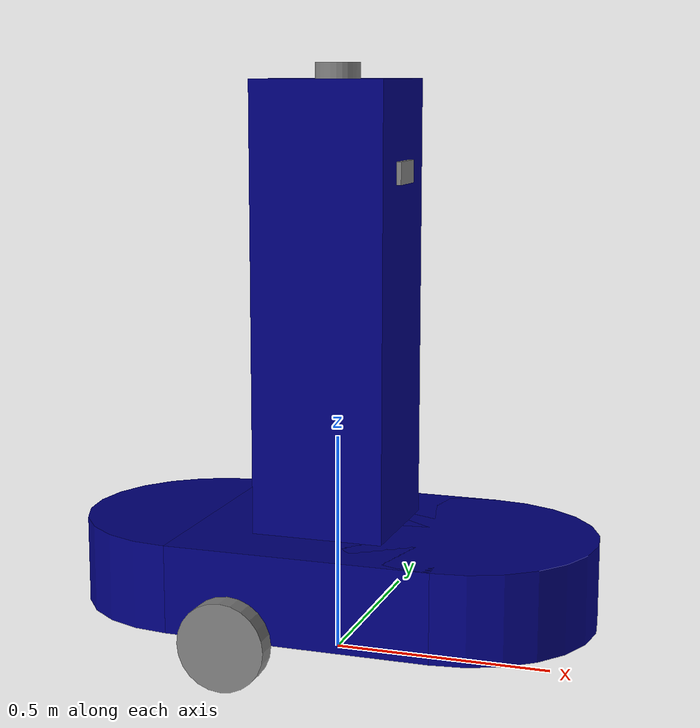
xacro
<?xml version="1.0"?>
<robot name="my_robot" xmlns:xacro="http://www.ros.org/wiki/xacro">

    <!-- Robot Base-->
    <xacro:include filename="common_properties.xacro" />
    <xacro:include filename="robot_base.xacro" />
    <xacro:include filename="robot_base_gazebo.xacro" />

    <!-- Sensors-->
     <xacro:include filename="camera.xacro"/>
     <xacro:include filename="lidar.xacro"/>
</robot>

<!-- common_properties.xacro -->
<robot xmlns:xacro="http://www.ros.org/wiki/xacro">

    <material name="blue">
        <color rgba="0 0 0.5 1" />
    </material>

    <material name="grey">
        <color rgba="0.5 0.5 0.5 1" />
    </material>

    <material name="red">
        <color rgba="0.5 0 0 1" />
    </material>

    <material name="black">
        <color rgba="0 0 0 1" />
    </material>

    <xacro:macro name="box_inertia" params="m l w h xyz rpy">
        <inertial>
            <origin xyz="${xyz}" rpy="${rpy}" />
            <mass value="${m}" />
            <inertia ixx="${(m/12) * (h*h + l*l)}" ixy="0" ixz="0"
                     iyy="${(m/12) * (w*w + l*l)}" iyz="0"
                     izz="${(m/12) * (w*w + h*h)}" />
        </inertial>
    </xacro:macro>

    <xacro:macro name="cylinder_inertia" params="m r h xyz rpy">
        <inertial>
            <origin xyz="${xyz}" rpy="${rpy}" />
            <mass value="${m}" />
            <inertia ixx="${(m/12) * (3*r*r + h*h)}" ixy="0" ixz="0"
                     iyy="${(m/12) * (3*r*r + h*h)}" iyz="0"
                     izz="${(m/2) * (r*r)}" />
        </inertial>
    </xacro:macro>

    <xacro:macro name="sphere_inertia" params="m r xyz rpy">
        <inertial>
            <origin xyz="${xyz}" rpy="${rpy}" />
            <mass value="${m}" />
            <inertia ixx="${(2/5) * m * r * r}" ixy="0" ixz="0"
                     iyy="${(2/5) * m * r * r}" iyz="0"
                     izz="${(2/5) * m * r * r}" />
        </inertial>
    </xacro:macro>

    <xacro:macro name="gazebo_lidar_sensor" params="sensor_name link_name update_rate samples resolution min_angle max_angle min max range_resolution plugin_name topic_name output_type frame_name ">
        <gazebo reference="${link_name}">
            <sensor name="${sensor_name}" type="ray">
                <always_on>true</always_on>
                <visualize>true</visualize>
                <update_rate>10</update_rate>
                <ray>
                    <scan>
                        <horizontal>
                            <samples>${samples}</samples>
                            <resolution>${resolution}</resolution>
                            <min_angle>${min_angle}</min_angle>
                            <max_angle>${max_angle}</max_angle>
                        </horizontal>
                    </scan>
                    <range>
                        <min>${min}</min>
                        <max>${max}</max>
                        <resolution>0.15</resolution>
                    </range>
                    <noise>
                        <type>gaussian</type>
                        <mean>0.0</mean>
                        <stddev>0.01</stddev>
                    </noise>
                </ray>
                <plugin filename="libgazebo_ros_ray_sensor.so" name="${plugin_name}">
                    <topic_name>${topic_name}</topic_name>
                    <output_type>${output_type}</output_type>
                    <frame_name>${frame_name}</frame_name>
                    <radiation_type>infrared</radiation_type>
                </plugin>
            </sensor>
        </gazebo>
    </xacro:macro>
</robot>

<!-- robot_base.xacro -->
<robot xmlns:xacro="http://www.ros.org/wiki/xacro">

    <!-- Robot Base-->
    <xacro:property name="base_length" value="0.6" />
    <xacro:property name="base_width" value="0.6" />
    <xacro:property name="base_height" value="0.2" />
    <xacro:property name="wheel_radius" value="0.1" />
    <xacro:property name="wheel_length" value="0.05" />

    <!-- tower-->
    <xacro:property name="tower_length" value="0.3" />
    <xacro:property name="tower_width" value="0.3" />
    <xacro:property name="tower_height" value="1.0" />

    <link name="base_footprint" />

    <link name="base_link">
        <visual>
            <geometry>
                <box size="${base_length} ${base_width} ${base_height}" />
            </geometry>
            <origin xyz="0 0 ${base_height / 2.0}" rpy="0 0 0" />
            <material name="blue" />
        </visual>
        <collision>
            <geometry>
                <box size="${base_length} ${base_width} ${base_height}" />
            </geometry>
            <origin xyz="0 0 ${base_height / 2.0}" rpy="0 0 0" />
        </collision>
        <xacro:box_inertia m="5.0" l="${2*base_length}" w="${2*base_width}" h="${2*base_height}"
                           xyz="0 0 ${base_height / 2.0}" rpy="0 0 0" />
    </link>

    <link name="front_bumper_link">
        <visual>
            <geometry>
                <cylinder radius="${base_width/2}" length="${base_height}"/>
            </geometry>
            <origin xyz="0 0 ${base_height / 2.0}" rpy="0 0 0" />
            <material name="blue" />
        </visual>
        <collision>
            <geometry>
                <box size="${base_width} ${base_width} ${base_height}" />
            </geometry>
            <origin xyz="0 0 ${base_height / 2.0}" rpy="0 0 0" />
        </collision>
        <xacro:cylinder_inertia m="5.0" r="${base_width/2}" h="${base_width}"
                           xyz="0 0 ${base_width / 2.0}" rpy="0 0 0" />
    </link>

    <link name="back_bumper_link">
        <visual>
            <geometry>
                <cylinder radius="${base_width/2}" length="${base_height}"/>
            </geometry>
            <origin xyz="0 0 ${base_height / 2.0}" rpy="0 0 0" />
            <material name="blue" />
        </visual>
        <collision>
            <geometry>
                <box size="${base_width} ${base_width} ${base_height}" />
            </geometry>
            <origin xyz="0 0 ${base_height / 2.0}" rpy="0 0 0" />
        </collision>
        <xacro:cylinder_inertia m="5.0" r="${base_width/2}" h="${base_width}"
                           xyz="0 0 ${base_width / 2.0}" rpy="0 0 0" />
    </link>

    <link name="tower_link">
        <visual>
            <geometry>
                <box size="${tower_length} ${tower_width} ${tower_height}" />
            </geometry>
            <origin xyz="0 0 ${tower_height/2.0}" rpy="0 0 0" />
            <material name="blue" />
        </visual>
        <collision>
            <geometry>
                <box size="${tower_length} ${tower_width} ${tower_height}" />
            </geometry>
            <origin xyz="0 0 ${tower_height}" rpy="0 0 0" />
        </collision>
        <xacro:box_inertia m="5.0" l="${2*tower_length}" w="${2*tower_width}" h="${2*tower_height}"
                           xyz="0 0 ${tower_height / 2.0}" rpy="0 0 0" />
    </link>

    <xacro:macro name="wheel_link" params="prefix">
        <link name="${prefix}_wheel_link">
            <visual>
                <geometry>
                    <cylinder radius="${wheel_radius}" length="${wheel_length}" />
                </geometry>
                <origin xyz="0 0 0" rpy="${pi / 2.0} 0 0" />
                <material name="grey" />
            </visual>
            <collision>
                <geometry>
                    <cylinder radius="${wheel_radius}" length="${wheel_length}" />
                </geometry>
                <origin xyz="0 0 0" rpy="${pi / 2.0} 0 0" />
            </collision>
            <xacro:cylinder_inertia m="1.0" r="${2*wheel_radius}" h="${2*wheel_length}"
                                    xyz="0 0 0" rpy="${pi / 2.0} 0 0" />
        </link>
    </xacro:macro>

    <xacro:wheel_link prefix="right" />
    <xacro:wheel_link prefix="left" />

    <link name="caster_wheel_link">
        <visual>
            <geometry>
                <sphere radius="${wheel_radius / 2.0}" />
            </geometry>
            <origin xyz="0 0 0" rpy="0 0 0" />
            <material name="grey" />
        </visual>
        <collision>
            <geometry>
                <sphere radius="${wheel_radius / 2.0}" />
            </geometry>
            <origin xyz="0 0 0" rpy="0 0 0" />
        </collision>
        <xacro:sphere_inertia m="0.5" r="${2*wheel_radius / 2.0}"
                              xyz="0 0 0" rpy="0 0 0" />
    </link>

    <joint name="front_bumper_joint" type="fixed">
        <parent link="base_link" />
        <child link="front_bumper_link" />
        <origin xyz="${base_length / 2.0} 0 0" rpy="0 0 0" />
    </joint>

    <joint name="back_bumper_joint" type="fixed">
        <parent link="base_link" />
        <child link="back_bumper_link" />
        <origin xyz="${-base_length / 2.0} 0 0" rpy="0 0 0" />
    </joint>

    <joint name="base_joint" type="fixed">
        <parent link="base_footprint" />
        <child link="base_link" />
        <origin xyz="0 0 ${wheel_radius}" rpy="0 0 0"/>
    </joint>

    <joint name="tower_joint" type="fixed">
        <parent link="base_link" />
        <child link="tower_link" />
        <origin xyz="0 0 ${base_height}" rpy="0 0 0" />
    </joint>

    <joint name="base_right_wheel_joint" type="continuous">
        <parent link="base_link" />
        <child link="right_wheel_link" />
        <origin xyz="${-base_length / 4.0} ${-(base_width + wheel_length) / 2.0} 0" rpy="0 0 0" />
        <axis xyz="0 1 0" />
    </joint>

    <joint name="base_left_wheel_joint" type="continuous">
        <parent link="base_link" />
        <child link="left_wheel_link" />
        <origin xyz="${-base_length / 4.0} ${(base_width + wheel_length) / 2.0} 0" rpy="0 0 0" />
        <axis xyz="0 1 0" />
    </joint>

    <joint name="base_caster_wheel_joint" type="fixed">
        <parent link="base_link" />
        <child link="caster_wheel_link" />
        <origin xyz="${base_length / 3.0} 0 ${-wheel_radius / 2.0}" rpy="0 0 0" />
    </joint>

</robot>

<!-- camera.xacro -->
<robot xmlns:xacro="http://www.ros.org/wiki/xacro">

    <xacro:property name="camera_length" value="0.01" />
    <xacro:property name="camera_width" value="0.1" />
    <xacro:property name="camera_height" value="0.05" />

    <link name="camera_link">
        <visual>
            <geometry>
                <box size="${camera_length} ${camera_width} ${camera_height}" />
            </geometry>
            <material name="grey" />
        </visual>
        <collision>
            <geometry>
                <box size="${camera_length} ${camera_width} ${camera_height}" />
            </geometry>
        </collision>
        <xacro:box_inertia m="0.1" l="${camera_length}" w="${camera_width}" h="${camera_height}"
                           xyz="0 0 0" rpy="0 0 0" />
    </link>

    <joint name="base_camera_joint" type="fixed">
        <parent link="tower_link" />
        <child link="camera_link" />
        <origin xyz="${(tower_width + camera_length) / 2.0} 0 ${tower_height * 0.8}" rpy="0 0 0" />
    </joint>

    <link name="camera_link_optical">
    </link>

    <joint name="camera_optical_joint" type="fixed">
        <!-- these values have to be these values otherwise the gazebo camera
            image won't be aligned properly with the frame it is supposedly
            originating from -->
        <origin xyz="0 0 0" rpy="${-pi/2} 0 ${-pi/2}"/>
        <parent link="camera_link"/>
        <child link="camera_link_optical"/>
    </joint>

    <gazebo reference="camera_link">
        <material>Gazebo/Red</material>
        <sensor name="camera_sensor" type="camera">
            <pose>0 0 0 0 0 0</pose>
            <visualize>true</visualize>
            <update_rate>10.0</update_rate>
            <plugin name="camera_controller" filename="libgazebo_ros_camera.so">
                <frame_name>camera_link_optical</frame_name>
            </plugin>
        </sensor>
    </gazebo>

</robot>

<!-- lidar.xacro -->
<robot xmlns:xacro="http://www.ros.org/wiki/xacro">

    <!-- Corrected property names and more reasonable dimensions -->
    <xacro:property name="lidar_radius" value="0.05" />
    <xacro:property name="lidar_length" value="0.05" />

    <!-- Macro for cylinder inertia (if not already defined elsewhere) -->
    <xacro:macro name="cylinder_inertia" params="m r h xyz rpy">
        <inertial>
            <origin xyz="${xyz}" rpy="${rpy}" />
            <mass value="${m}" />
            <inertia ixx="${m*(3*r*r + h*h)/12}" ixy="0" ixz="0"
                     iyy="${m*(3*r*r + h*h)/12}" iyz="0"
                     izz="${m*r*r/2}" />
        </inertial>
    </xacro:macro>

    <link name="lidar_link">
        <visual>
            <geometry>
                <cylinder radius="${lidar_radius}" length="${lidar_length}"/>
            </geometry>
            <material name="grey" />
        </visual>
        <collision>
            <geometry>
                <cylinder radius="${lidar_radius}" length="${lidar_length}"/>
            </geometry>
        </collision>
        <xacro:cylinder_inertia m="0.1" r="${lidar_radius}" h="${lidar_length}"
                           xyz="0 0 0" rpy="0 0 0" />
    </link>

    <joint name="base_lidar_joint" type="fixed">
        <parent link="tower_link" />
        <child link="lidar_link" />
        <!-- Placing lidar on top of the base (base_height is 0.2) -->
        <origin xyz="0 0 ${tower_height+0.01}" rpy="0 0 0" />
    </joint>

    <gazebo reference="lidar_link">
        <material>Gazebo/Red</material>
        <sensor name="laser" type="ray">
            <pose>0 0 0 0 0 0</pose>
            <visualize>true</visualize>
            <update_rate>10.0</update_rate>
            <ray>
                <scan>
                    <horizontal>
                        <samples>360</samples>
                        <min_angle>-3.14</min_angle>
                        <max_angle>3.14</max_angle>
                    </horizontal>
                </scan>
                <range>
                    <min>0.3</min>
                    <max>12</max>
                </range>
            </ray>
            <plugin name="laser_controller" filename="libgazebo_ros_ray_sensor.so">
                <ros>
                    <argument>--remap ~/out:=scan</argument>
                </ros>
                <output_type>sensor_msgs/LaserScan</output_type>
                <!-- Changed to match link name -->
                <frame_name>lidar_link</frame_name>
            </plugin>
        </sensor>
    </gazebo>

</robot>
